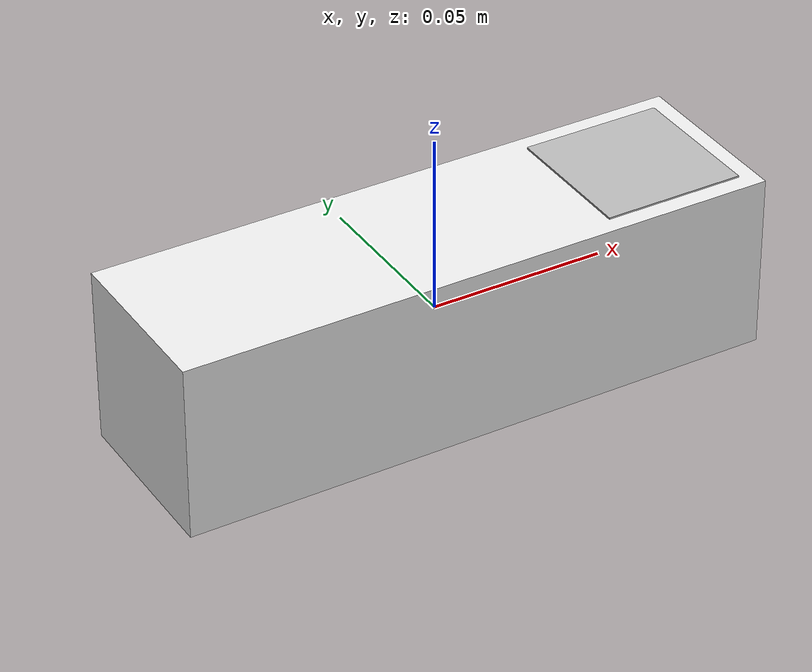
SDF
<?xml version='1.0'?>
<sdf version='1.6'>
  <model name='object'>
    <static>false</static>
    <link name='link'>
      <pose>0.0 0.0 0.0 0 -0 0</pose>
      <inertial>
        <!--NOTE: Uses limestone density (i.e 2000 kg/m^3) to calculate the mass
        see https://en.wikipedia.org/wiki/Limestone
        -->
        <mass>0.08192</mass>
        <inertia>
          <ixx>0.01</ixx>
          <ixy>0</ixy>
          <ixz>0</ixz>
          <iyy>0.01</iyy>
          <iyz>0</iyz>
          <izz>0.01</izz>
        </inertia>
        <pose>0 0 0 0 -0 0</pose>
      </inertial>
        <self_collide>0</self_collide>
      <kinematic>0</kinematic>
      <enable_wind>0</enable_wind>
      <pose>0 0 0 0 -0 0</pose>
      <visual name='visual'>
        <geometry>
          <box>
            <size>0.170 0.05 0.05</size>
          </box>
        </geometry>
        <material>
          <script>
            <uri>file://media/materials/scripts/gazebo.material</uri>
            <name>Gazebo/White</name>
          </script>
          <shader type='pixel'/>
        </material>
        <pose>0 0 0 0 -0 0</pose>
        <transparency>0</transparency>
        <cast_shadows>false</cast_shadows>
      </visual>
      <collision name='collision'>
        <laser_retro>0</laser_retro>
        <max_contacts>10</max_contacts>
        <pose>0 0 0 0 -0 0</pose>
        <geometry>
          <box>
            <size>0.170 0.05 0.05</size>
          </box>
        </geometry>
        <surface>
          <!--NOTE: Uses dynamic friction of brick on a wood surface
          see https://www.engineeringtoolbox.com/friction-coefficients-d_778.html
          -->
          <friction>
            <ode>
              <mu>0.6</mu>
              <mu2>0.6</mu2>
              <fdir1>0 0 0</fdir1>
              <slip1>0</slip1>
              <slip2>0</slip2>
            </ode>
            <torsional>
              <coefficient>1</coefficient>
              <patch_radius>0</patch_radius>
              <surface_radius>0</surface_radius>
              <use_patch_radius>1</use_patch_radius>
              <ode>
                <slip>0</slip>
              </ode>
            </torsional>
          </friction>
          <bounce>
            <restitution_coefficient>0</restitution_coefficient>
            <threshold>1e+06</threshold>
          </bounce>
          <contact>
            <collide_without_contact>0</collide_without_contact>
            <collide_without_contact_bitmask>1</collide_without_contact_bitmask>
            <collide_bitmask>1</collide_bitmask>
            <ode>
              <soft_cfm>0</soft_cfm>
              <soft_erp>0.2</soft_erp>
              <kp>1e+13</kp>
              <kd>1</kd>
              <max_vel>0</max_vel>
              <min_depth>0.003</min_depth>
            </ode>
            <bullet>
              <split_impulse>1</split_impulse>
              <split_impulse_penetration_threshold>-0.01</split_impulse_penetration_threshold>
              <soft_cfm>0</soft_cfm>
              <soft_erp>0.2</soft_erp>
              <kp>1e+13</kp>
              <kd>1</kd>
            </bullet>
          </contact>
        </surface>
      </collision>
    </link>

    <link name='link1'>
      <pose>0.06 0.0 0.025 1.57079632 0.0 0.0</pose>
      <gravity>0</gravity>
      <visual name="visual1">
        <pose>0.0 0.0 0.0 0.0 0.0 0.0</pose>
        <geometry>
          <box>
            <size>0.04 0.001 0.04</size>
          </box>
        </geometry>
        <material>
          <script>
            <name>Gazebo/aruco-123</name>
            <uri>file://media/materials/scripts/aruco.material</uri>
          </script>
        </material>
        <cast_shadows>false</cast_shadows>
      </visual>
      <collision name='collision'>
        <pose>0.0 0.0 0.0 0.0 0.0 0.0</pose>
        <geometry>
          <box>
            <size>0.04 0.001 0.04</size>
          </box>
        </geometry>
      </collision>
    </link>
    <joint type="fixed" name="object_marker_joint">
      <parent>link</parent>
      <child>link1</child>
      <pose>0.0 0.0 0.0 0.0 0.0 0.0</pose>
    </joint>
  </model>
</sdf>
